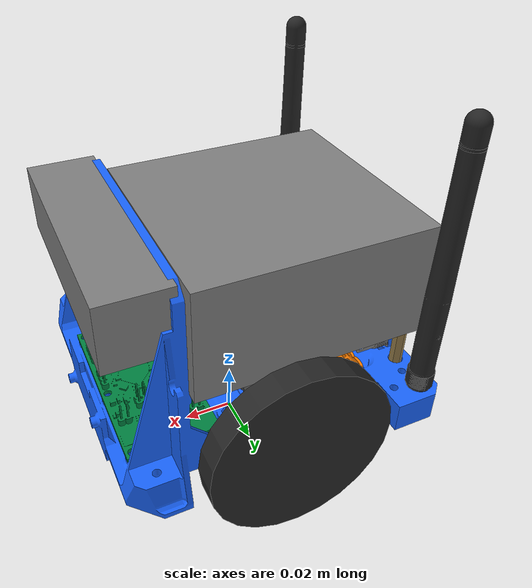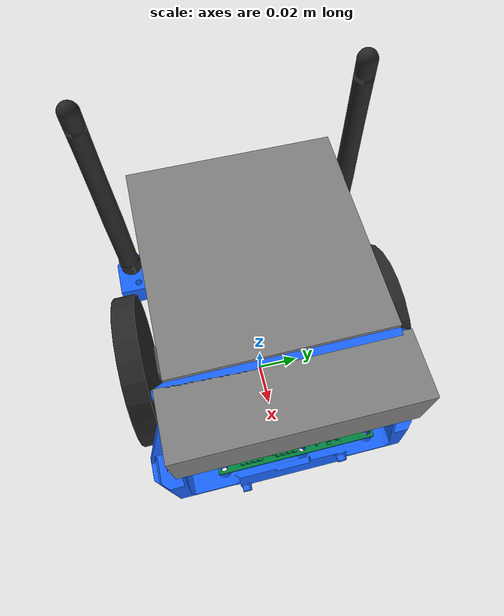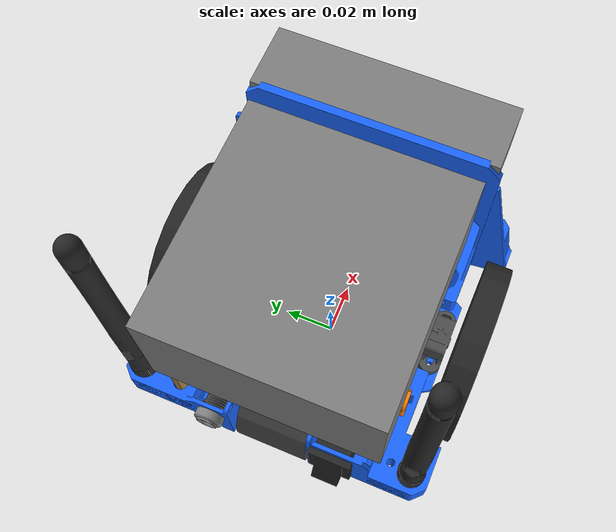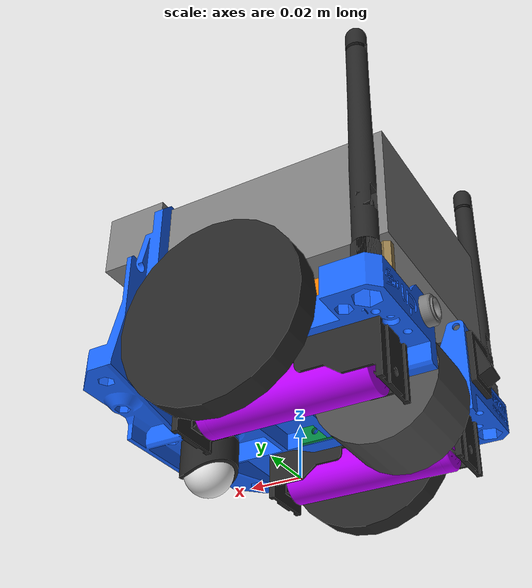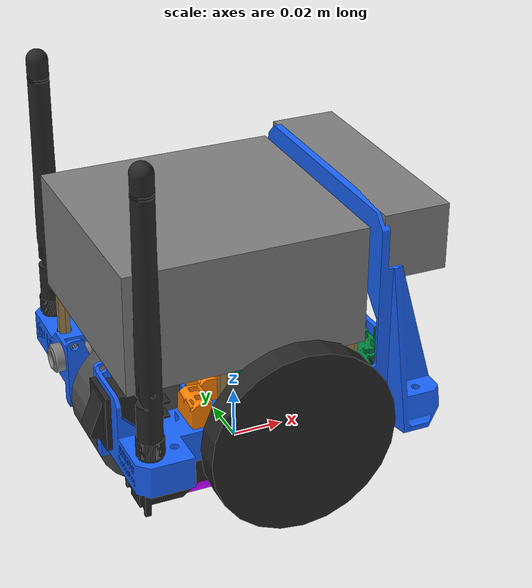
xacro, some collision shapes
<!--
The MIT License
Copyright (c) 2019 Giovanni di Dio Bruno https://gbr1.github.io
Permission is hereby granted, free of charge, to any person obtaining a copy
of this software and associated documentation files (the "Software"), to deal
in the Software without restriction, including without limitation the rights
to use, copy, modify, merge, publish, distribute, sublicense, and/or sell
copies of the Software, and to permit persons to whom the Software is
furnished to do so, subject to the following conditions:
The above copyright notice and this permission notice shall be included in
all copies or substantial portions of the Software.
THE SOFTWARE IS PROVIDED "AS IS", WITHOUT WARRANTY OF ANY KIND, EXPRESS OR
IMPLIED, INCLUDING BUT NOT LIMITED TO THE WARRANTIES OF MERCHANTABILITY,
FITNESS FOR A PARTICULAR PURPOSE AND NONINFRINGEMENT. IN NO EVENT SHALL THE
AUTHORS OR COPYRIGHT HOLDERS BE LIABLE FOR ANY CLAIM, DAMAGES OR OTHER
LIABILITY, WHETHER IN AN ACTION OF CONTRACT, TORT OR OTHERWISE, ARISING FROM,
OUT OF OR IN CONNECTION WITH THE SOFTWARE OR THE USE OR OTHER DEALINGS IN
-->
<?xml version="1.0"?>
<robot name="erwhi" xmlns:xacro="http://ros.org/wiki/xacro">
    <xacro:include filename="$(find erwhi_description)/urdf/erwhi.urdf.xacro" />
    <xacro:erwhi_robot />
</robot>

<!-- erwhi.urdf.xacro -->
<robot name="erwhi_robot" xmlns:xacro="http://ros.org/wiki/xacro">

    <xacro:include filename="$(find erwhi_description)/urdf/materials.xacro" />

    <xacro:include filename="$(find erwhi_description)/urdf/parts/wheel.urdf.xacro" />
    <xacro:include filename="$(find erwhi_description)/urdf/parts/chassis.urdf.xacro" />

    <xacro:include filename="$(find erwhi_description)/urdf/sensors.urdf.xacro" />
    <xacro:include filename="$(find erwhi_description)/urdf/casters.urdf.xacro" />
    <xacro:include filename="$(find erwhi_description)/urdf/details.urdf.xacro" />

    <xacro:property name="path_meshes" value="package://erwhi_description/meshes" />

    <xacro:property name="M_PI" value="3.1415926535897931" />
    <xacro:property name="M_PI_2" value="1.570796327" />

    <!-- wheel -->
    <xacro:property name="wheel_tread" value="0.01" />
    <xacro:property name="wheel_radius" value="0.035" />
    <xacro:property name="wheel_mass" value="0.100" />
    <xacro:property name="wheel_offset_x" value="0.0" />
    <xacro:property name="wheel_offset_y" value="0.057" />
    <xacro:property name="wheel_offset_z" value="0.006" />

    <xacro:macro name="erwhi_robot">

        <link name="base_footprint">
            <visual>
                <origin xyz="0 0 0" rpy="0 0 0" />
                <geometry>
                    <box size="0.001 0.001 0.001" />
                </geometry>
                <material name="erwhi_footprint" />
            </visual>
        </link>

        <gazebo reference="base_footprint">
            <turnGravityOff>false</turnGravityOff>
        </gazebo>

        <joint name="base_footprint_joint" type="fixed">
            <origin xyz="0 0 ${wheel_radius - wheel_offset_z}" rpy="0 0 0" />
            <parent link="base_footprint"/>
            <child link="base_link" />
        </joint>

        <!-- BASE-LINK -->
        <!-- robot body -->
        <xacro:chassis type="base_link">
        </xacro:chassis>

        <!-- wheels -->
        <xacro:wheel lr="left" parent="base_link" offset_x="${wheel_offset_x}" offset_y="${wheel_offset_y}" offset_z="${wheel_offset_z}" flip="0">
        </xacro:wheel>
        <xacro:wheel lr="right" parent="base_link" offset_x="${wheel_offset_x}" offset_y="${-wheel_offset_y}" offset_z="${wheel_offset_z}" flip="1">
        </xacro:wheel>

        <!-- casters -->
        <xacro:casters />
        <!-- details -->
        <xacro:details />
        <!-- sensors -->
        <xacro:sensors />

    </xacro:macro>

    <!-- Differential drive controller -->
    <gazebo>
        <plugin name="differential_drive_controller" filename="libgazebo_ros_diff_drive.so">
            <legacyMode>true</legacyMode>
            <rosDebugLevel>Debug</rosDebugLevel>
            <publishWheelTF>false</publishWheelTF>
            <robotNamespace>/</robotNamespace>
            <publishTf>1</publishTf>
            <publishWheelJointState>false</publishWheelJointState>
            <alwaysOn>true</alwaysOn>
            <updateRate>100.0</updateRate>
            <!-- strange gazebo annotation -->
            <leftJoint>right_joint</leftJoint>
            <rightJoint>left_joint</rightJoint>
            <wheelSeparation>${2*wheel_offset_y}</wheelSeparation>
            <wheelDiameter>${2*wheel_radius}</wheelDiameter>
            <broadcastTF>1</broadcastTF>
            <wheelTorque>1</wheelTorque>
            <wheelAcceleration>1.8</wheelAcceleration>
            <commandTopic>/erwhi_velocity_controller/cmd_vel</commandTopic>
            <publishOdomTF>false</publishOdomTF>
            <odometryFrame>odom</odometryFrame>
            <odometryTopic>/erwhi_velocity_controller/odom</odometryTopic>
            <odometrySource>world</odometrySource>
            <robotBaseFrame>base_footprint</robotBaseFrame>
        </plugin>
    </gazebo>

</robot>

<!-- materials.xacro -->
<robot name="erwhi_materials">

    <material name="erwhi_black">
        <color rgba="0.15 0.15 0.15 1.0"/>
    </material>

    <material name="erwhi_blue">
        <color rgba="0.1 0.40 1 1.0"/>
    </material>

    <material name="erwhi_light_grey">
        <color rgba="0.3 0.3 0.3 1.0"/>
    </material>

    <material name="erwhi_aluminum">
	    <color rgba="0.5 0.5 0.5 1"/>
    </material>

    <material name="erwhi_purple">
        <color rgba="0.749 0 1 1"/>
    </material>

    <material name="erwhi_footprint">
        <color rgba="1 0 0 0" />
    </material>

    <material name="erwhi_pcb">
        <color rgba="0 0.51 0.25 1.0" />
    </material>

    <material name="erwhi_orange">
        <color rgba="1.0 0.5 0 1.0" />
    </material>

    <material name="erwhi_brass">
        <color rgba="0.6 0.5 0.3 1.0" />
    </material>

    <material name="erwhi_white">
        <color rgba="0.9 0.9 0.9 1.0" />
    </material>
</robot>

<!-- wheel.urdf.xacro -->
<robot name="wheel" xmlns:xacro="http://ros.org/wiki/xacro">
     <xacro:macro name="wheel" params="lr parent offset_x offset_y offset_z flip">
        <link name="${lr}_wheel">
            <inertial>
                <origin xyz="0 0 0" rpy="0 0 0" />
                <mass value="${wheel_mass}" />
                <inertia ixx="${0.0834*wheel_mass*(3.0*wheel_radius*wheel_radius+wheel_tread*wheel_tread)}" ixy="0" ixz="0"
                         iyy="${0.0834*wheel_mass*(3.0*wheel_radius*wheel_radius+wheel_tread*wheel_tread)}" iyz="0"
                         izz="${0.5*wheel_mass*wheel_radius*wheel_radius}" />
            </inertial>
            <visual>
                <origin xyz="0 0 0" rpy="0 0 ${-flip*M_PI+M_PI_2}" />
                <geometry>
                    <mesh filename="${path_meshes}/pololu-wheel-70.stl" scale="0.001 0.001 0.001"/>
                </geometry>
                <material name="erwhi_black" />
            </visual>
            <collision>
                <origin xyz="0 0 0" rpy="${M_PI_2} 0 0" />
                <geometry>
                    <cylinder length="${wheel_tread}" radius="${wheel_radius}" />
                </geometry>
            </collision>
        </link>

        <gazebo reference="${lr}_wheel">
            <mu1 value="1.0"/>
            <mu2 value="1.0"/>
            <kp  value="10000000.0" />
            <kd  value="1.0" />
            <fdir1 value="1 0 0"/>
            <turnGravityOff>false</turnGravityOff>
            <material>Gazebo/FlatBlack</material>
        </gazebo>

        <joint name="${lr}_joint" type="continuous">
            <parent link="${parent}" />
            <child link="${lr}_wheel" />
            <axis xyz="0 1 0" rpy="0  0" />
            <origin rpy="0.0 0.0 0.0" xyz="${offset_x} ${offset_y} ${offset_z}"/>
            <limit effort="100" velocity="100"/>
            <joint_properties damping="0.0" friction="0.0"/>
        </joint>

        <transmission name="${lr}_trans" type="SimpleTransmission">
		    <type>transmission_interface/SimpleTransmission</type>
            <joint name="${lr}_joint">
                <hardwareInterface>hardware_interface/VelocityJointInterface</hardwareInterface>
            </joint>
		    <actuator name="${lr}_motor">
			    <mechanicalReduction>1</mechanicalReduction>
                <hardwareInterface>VelocityJointInterface</hardwareInterface>
		    </actuator>
        </transmission>
     </xacro:macro>
</robot>

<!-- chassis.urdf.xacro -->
<robot name="chassis" xmlns:xacro="http://ros.org/wiki/xacro">
    <xacro:macro name="chassis" params="type">

        <xacro:property name="chassis_mass" value="0.500" />
        <xacro:property name="chassis_size_x" value="0.120" />
        <xacro:property name="chassis_size_y" value="0.120" />
        <xacro:property name="chassis_size_z" value="0.090" />

        <link name="${type}">
            <inertial>
                <origin xyz="0 0 ${-chassis_size_z}" rpy="0 0 0" />
                <mass value="${chassis_mass}" />
                <inertia ixx="${chassis_mass*(chassis_size_y*chassis_size_y+chassis_size_z*chassis_size_z)}" ixy="0" ixz="0"
                         iyy="${chassis_mass*(chassis_size_x*chassis_size_x+chassis_size_z*chassis_size_z)}" iyz="0"
                         izz="${chassis_mass*(chassis_size_x*chassis_size_x+chassis_size_y*chassis_size_y)}" />
            </inertial>
            <visual>
                <origin xyz="0 0 0" rpy="${M_PI_2} 0 ${M_PI}" />
                <geometry>
                    <mesh filename="${path_meshes}/base_mk4_v33.stl" scale="0.001 0.001 0.001"/>
                </geometry>
                <material name="erwhi_blue" />
            </visual>
            <collision>
                <origin xyz="0 0 ${chassis_size_z/2-0.01}" rpy="0 0 0" />
                <geometry>
                    <box size="${chassis_size_x} ${chassis_size_y} ${chassis_size_z}"/>
                </geometry>
            </collision>
        </link>
        <gazebo reference="base_link">
            <turnGravityOff>false</turnGravityOff>
            <material>Gazebo/SkyBlue</material>
        </gazebo>
    </xacro:macro>
</robot>

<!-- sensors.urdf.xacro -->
<robot name="sensors" xmlns:xacro="http://ros.org/wiki/xacro">

    <xacro:include filename="$(find erwhi_description)/urdf/sensors/d435.urdf.xacro" />
    <xacro:include filename="$(find erwhi_description)/urdf/sensors/sengi.urdf.xacro" />
    <xacro:include filename="$(find erwhi_description)/urdf/sensors/imu.urdf.xacro" />

    <xacro:property name="d435_offset_x" value="0.049" />
    <xacro:property name="d435_offset_y" value="0" />
    <xacro:property name="d435_offset_z" value="0.053" />

    <!-- sengi -->
    <xacro:property name="sengi_offset_x" value="0.038" />
    <xacro:property name="sengi_offset_y" value="0.0035" />
    <xacro:property name="sengi_offset_z" value="0.004" />

    <xacro:macro name="sensors">
        <!-- sengi -->
        <xacro:sengi offset_x="${sengi_offset_x}" offset_y="${sengi_offset_y}" offset_z="${sengi_offset_z}">
        </xacro:sengi>
        <xacro:imu>
        </xacro:imu>
        <!-- realsense D435 -->
        <xacro:d435 offset_x="${d435_offset_x}" offset_y="${d435_offset_y}" offset_z="${d435_offset_z}">
        </xacro:d435>

    </xacro:macro>
</robot>

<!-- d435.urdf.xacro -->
<robot name="d435" xmlns:xacro="http://ros.org/wiki/xacro">
    <xacro:macro name="d435" params="offset_x offset_y offset_z">

        <xacro:property name="d435_cam_depth_to_left_ir_offset" value="0.0"/>
        <xacro:property name="d435_cam_depth_to_right_ir_offset" value="-0.050"/>
        <xacro:property name="d435_cam_depth_to_color_offset" value="0.015"/>

        <xacro:property name="d435_cam_width" value="0.090"/>
        <xacro:property name="d435_cam_height" value="0.025"/>
        <xacro:property name="d435_cam_depth" value="0.02505"/>
        <xacro:property name="d435_cam_mount_from_center_offset" value="0.0149"/>

        <xacro:property name="d435_cam_depth_px" value="${d435_cam_mount_from_center_offset}"/>
        <xacro:property name="d435_cam_depth_py" value="0.0175"/>
        <xacro:property name="d435_cam_depth_pz" value="${d435_cam_height/2}"/>

        <joint name="camera_joint" type="fixed">
            <parent link="base_link"/>
            <child link="camera_bottom_screw_frame" />
            <origin rpy="0.0 0.0 0" xyz="${offset_x} ${offset_y} ${offset_z}"/>
        </joint>
        <link name="camera_bottom_screw_frame"/>
        <gazebo reference="camera_bottom_screw_frame">
            <turnGravityOff>false</turnGravityOff>
        </gazebo>

        <joint name="camera_link_joint" type="fixed">
            <origin xyz="0 ${d435_cam_depth_py} ${d435_cam_depth_pz}" rpy="0 0 0"/>
            <parent link="camera_bottom_screw_frame"/>
            <child link="camera_link" />
        </joint>

        <link name="camera_link">
            <visual>
                <origin xyz="${d435_cam_mount_from_center_offset} ${-d435_cam_depth_py} 0" rpy="${M_PI_2} 0 ${M_PI_2}"/>
                <geometry>
                    <mesh filename="${path_meshes}/d435.stl" scale="0.001 0.001 0.001" />
                </geometry>
            <material name="erwhi_aluminum"/>
        </visual>
        <collision>
            <origin xyz="0 ${-d435_cam_depth_py} 0" rpy="0 0 0"/>
            <geometry>
                <box size="${d435_cam_depth} ${d435_cam_width} ${d435_cam_height}"/>
            </geometry>
        </collision>
        <inertial>
            <mass value="0.180" />
            <origin xyz="0 0 0" />
            <inertia ixx="0.003881243" ixy="0.0" ixz="0.0" iyy="0.000498940" iyz="0.0" izz="0.003879257" />
        </inertial>
        </link>
        <gazebo reference="camera_link">
            <turnGravityOff>false</turnGravityOff>
            <material>Gazebo/Grey</material>
        </gazebo>

        <!-- camera depth joints and links -->
        <joint name="camera_depth_joint" type="fixed">
            <origin xyz="0 0 0" rpy="0 0 0"/>
            <parent link="camera_link"/>
            <child link="camera_depth_frame" />
        </joint>
        <link name="camera_depth_frame"/>
        <gazebo reference="camera_depth_frame">
            <turnGravityOff>false</turnGravityOff>
        </gazebo>

        <joint name="camera_depth_optical_joint" type="fixed">
            <origin xyz="0 0 0" rpy="${-M_PI_2} 0 ${-M_PI_2}" />
            <parent link="camera_depth_frame" />
            <child link="camera_depth_optical_frame" />
        </joint>
        <link name="camera_depth_optical_frame"/>
        <gazebo reference="camera_depth_optical_frame">
            <turnGravityOff>false</turnGravityOff>
        </gazebo>

        <!-- camera left IR joints and links -->
        <joint name="camera_left_ir_joint" type="fixed">
            <origin xyz="0 ${d435_cam_depth_to_left_ir_offset} 0" rpy="0 0 0" />
            <parent link="camera_depth_frame" />
            <child link="camera_left_ir_frame" />
        </joint>
        <link name="camera_left_ir_frame"/>
        <gazebo reference="camera_left_ir_frame">
            <turnGravityOff>false</turnGravityOff>
        </gazebo>

        <joint name="camera_left_ir_optical_joint" type="fixed">
            <origin xyz="0 0 0" rpy="${-M_PI_2} 0 ${-M_PI_2}" />
            <parent link="camera_left_ir_frame" />
            <child link="camera_left_ir_optical_frame" />
        </joint>
        <link name="camera_left_ir_optical_frame"/>
        <gazebo reference="camera_left_ir_optical_frame">
            <turnGravityOff>false</turnGravityOff>
        </gazebo>

        <!-- camera right IR joints and links -->
        <joint name="camera_right_ir_joint" type="fixed">
            <origin xyz="0 ${d435_cam_depth_to_right_ir_offset} 0" rpy="0 0 0" />
            <parent link="camera_depth_frame" />
            <child link="camera_right_ir_frame" />
        </joint>
        <link name="camera_right_ir_frame"/>
        <gazebo reference="camera_right_ir_frame">
            <turnGravityOff>false</turnGravityOff>
        </gazebo>

        <joint name="camera_right_ir_optical_joint" type="fixed">
            <origin xyz="0 0 0" rpy="${-M_PI_2} 0 ${-M_PI_2}" />
            <parent link="camera_right_ir_frame" />
            <child link="camera_right_ir_optical_frame" />
        </joint>
        <link name="camera_right_ir_optical_frame"/>
        <gazebo reference="camera_right_ir_optical_frame">
            <turnGravityOff>false</turnGravityOff>
        </gazebo>

        <!-- camera color joints and links -->
        <joint name="camera_color_joint" type="fixed">
            <origin xyz="0 ${d435_cam_depth_to_color_offset} 0" rpy="0 0 0" />
            <parent link="camera_depth_frame" />
            <child link="camera_color_frame" />
        </joint>
        <link name="camera_color_frame"/>
        <gazebo reference="camera_color_frame">
            <turnGravityOff>false</turnGravityOff>
        </gazebo>

        <joint name="camera_color_optical_joint" type="fixed">
            <origin xyz="0 0 0" rpy="${-M_PI_2} 0 ${-M_PI_2}" />
            <parent link="camera_color_frame" />
            <child link="camera_color_optical_frame" />
        </joint>
        <link name="camera_color_optical_frame"/>
        <gazebo reference="camera_color_optical_frame">
            <turnGravityOff>false</turnGravityOff>
        </gazebo>

        <link name="camera_depth_frame_gazebo"/>
        <joint name="gazebo_joint" type="fixed">
            <origin xyz="0 0 0" rpy="${-M_PI_2} 0 ${-M_PI_2}" />
            <parent link="camera_link" />
            <child link="camera_depth_frame_gazebo" />
        </joint>
        <gazebo reference="camera_depth_frame_gazebo">
            <turnGravityOff>false</turnGravityOff>
        </gazebo>

    </xacro:macro>

    <gazebo reference="camera_link">
        <sensor name="d435" type="depth">
            <update_rate>30</update_rate>
            <camera>
                <horizontal_fov>1.59174</horizontal_fov>
                <image>
                    <width>640</width>
                    <height>480</height>
                    <format>R8G8B8</format>
                </image>
                <clip>
                    <near>0.02</near>
                    <far>6</far>
                </clip>
            </camera>
            <plugin name="camera_plugin" filename="libgazebo_ros_openni_kinect.so">
                <visualize>true</visualize>
                <baseline>0.05</baseline>
                <alwaysOn>true</alwaysOn>
                <updateRate>0.0</updateRate>
                <cameraName>d435</cameraName>
                <imageTopicName>/camera/color/image_raw</imageTopicName>
                <cameraInfoTopicName>/camera/color/camera_info</cameraInfoTopicName>
                <depthImageTopicName>/camera/aligned_depth_to_color/image_raw</depthImageTopicName>
                <depthImageInfoTopicName>/camera/depth/camera_info</depthImageInfoTopicName>
                <pointCloudTopicName>/camera/depth/color/points</pointCloudTopicName>
                <frameName>camera_depth_frame_gazebo</frameName>
                <pointCloudCutoff>0.02</pointCloudCutoff>
                <distortionK1>0</distortionK1>
                <distortionK2>0</distortionK2>
                <distortionK3>0</distortionK3>
                <distortionT1>0</distortionT1>
                <distortionT2>0</distortionT2>
                <CxPrime>0</CxPrime>
                <Cx>0</Cx>
                <Cy>0</Cy>
                <focalLength>0</focalLength>
                <hackBaseline>0</hackBaseline>
            </plugin>
        </sensor>
    </gazebo>
</robot>

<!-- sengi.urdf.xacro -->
<robot name="sengi" xmlns:xacro="http://ros.org/wiki/xacro">
    <xacro:macro name="sengi" params="offset_x offset_y offset_z">

        <xacro:property name="sengi_size_x" value="0.070" />
        <xacro:property name="sengi_size_y" value="0.035" />
        <xacro:property name="sengi_size_z" value="0.010" />
        <xacro:property name="sengi_mass" value="0.01" />

        <link name="sengi_link">
            <inertial>
                <origin xyz="0 0 0" rpy="0 0 0" />
                <mass value="${sengi_mass}" />
                <inertia ixx="${sengi_mass*(sengi_size_y*sengi_size_y+sengi_size_z*sengi_size_z)}" ixy="0" ixz="0"
                         iyy="${sengi_mass*(sengi_size_x*sengi_size_x+sengi_size_z*sengi_size_z)}" iyz="0"
                         izz="${sengi_mass*(sengi_size_x*sengi_size_x+sengi_size_y*sengi_size_y)}" />
            </inertial>
            <visual>
                <origin xyz="${-sengi_size_y/2} ${sengi_size_x/2}  0" rpy="0 0 ${-M_PI_2}" />
                <geometry>
                    <mesh filename="${path_meshes}/sengi_F.stl" scale="0.001 0.001 0.001"/>
                </geometry>
                <material name="erwhi_pcb" />
            </visual>
            <collision>
                <origin xyz="0 0 0" rpy="0 0 ${M_PI_2}" />
                <geometry>
                    <box size="${sengi_size_x} ${sengi_size_y} ${sengi_size_z}" />
                </geometry>
            </collision>
        </link>
        <joint name="sengi_joint" type="fixed">
            <parent link="base_link" />
            <child link="sengi_link" />
            <origin rpy="0 0 0" xyz="${offset_x} ${offset_y} ${offset_z}"/>
        </joint>
        <gazebo reference="sengi_link">
            <turnGravityOff>false</turnGravityOff>
            <material>Gazebo/Green</material>
        </gazebo>
    </xacro:macro>
</robot>

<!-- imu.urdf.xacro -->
<robot name="imu" xmlns:xacro="http://ros.org/wiki/xacro">
    <xacro:macro name="imu">
        <xacro:property name="imu_size_x" value="0.004" />
        <xacro:property name="imu_size_y" value="0.006" />
        <xacro:property name="imu_size_z" value="0.001" />
        <xacro:property name="imu_mass" value="0.00001" />
        <xacro:property name="imu_offset_x" value="0.0095" />
        <xacro:property name="imu_offset_y" value="-0.029" />
        <xacro:property name="imu_offset_z" value="0.0021" />

        <link name="imu_link">
            <inertial>
                <origin xyz="0 0 0" rpy="0 0 0" />
                <mass value="${imu_mass}" />
                <inertia ixx="${imu_mass*(imu_size_y*imu_size_y+imu_size_z*imu_size_z)}" ixy="0" ixz="0"
                         iyy="${imu_mass*(imu_size_x*imu_size_x+imu_size_z*imu_size_z)}" iyz="0"
                         izz="${imu_mass*(imu_size_x*imu_size_x+imu_size_y*imu_size_y)}" />
            </inertial>
            <visual>
                <origin xyz="0 0 0" rpy="0 0 0" />
                <geometry>
                    <box size="${imu_size_x} ${imu_size_y} ${imu_size_z}" />
                </geometry>
                <material name="erwhi_black" />
            </visual>
            <collision>
                <origin xyz="0 0 0" rpy="0 0 0" />
                <geometry>
                    <box size="${imu_size_x} ${imu_size_y} ${imu_size_z}" />
                </geometry>
            </collision>
        </link>
        <joint name="imu_joint" type="fixed">
            <parent link="sengi_link" />
            <child link="imu_link" />
            <origin rpy="0 0 0" xyz="${imu_offset_x} ${imu_offset_y} ${imu_offset_z}"/>
        </joint>
        <gazebo reference="imu_link">
            <turnGravityOff>false</turnGravityOff>
            <material>Gazebo/FlatBlack</material>
        </gazebo>
    </xacro:macro>

    <gazebo reference="imu_link">
        <gravity>true</gravity>
        <sensor name="imu_sensor" type="imu">
            <always_on>true</always_on>
            <update_rate>100</update_rate>
            <visualize>true</visualize>
            <topic>/imu/data</topic>
            <plugin filename="libgazebo_ros_imu_sensor.so" name="imu_plugin">
                <topicName>/imu/data</topicName>
                <bodyName>imu_link</bodyName>
                <updateRateHZ>100.0</updateRateHZ>
                <gaussianNoise>0.0025</gaussianNoise>
                <xyzOffset>0 0 0</xyzOffset>
                <rpyOffset>0 0 0</rpyOffset>
                <frameName>imu_link</frameName>
            </plugin>
            <pose>0 0 0 0 0 0</pose>
        </sensor>
    </gazebo>
</robot>

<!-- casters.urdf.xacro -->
<robot name="casters" xmlns:xacro="http://ros.org/wiki/xacro">

    <xacro:include filename="$(find erwhi_description)/urdf/casters/omniwheel.urdf.xacro" />
    <xacro:include filename="$(find erwhi_description)/urdf/casters/ball_caster_fixed.urdf.xacro" />
    <xacro:include filename="$(find erwhi_description)/urdf/casters/ball_caster.urdf.xacro" />

    <!-- omniwheel -->
    <xacro:property name="omniwheel_offset_x" value="-0.036" />
    <xacro:property name="omniwheel_offset_y" value="0.0" />
    <xacro:property name="omniwheel_offset_z" value="-0.006" />

    <!-- ball caster -->
    <xacro:property name="ball_caster_fixed_offset_x" value="0.039" />
    <xacro:property name="ball_caster_fixed_offset_y" value="0.0" />
    <xacro:property name="ball_caster_fixed_offset_z" value="-0.0063" />

    <xacro:property name="ball_caster_offset_x" value="0.0" />
    <xacro:property name="ball_caster_offset_y" value="0.0" />
    <xacro:property name="ball_caster_offset_z" value="-0.012" />

    <xacro:macro name="casters">

        <!-- casters -->
        <xacro:omniwheel offset_x="${omniwheel_offset_x}" offset_y="${omniwheel_offset_y}" offset_z="${omniwheel_offset_z}">
        </xacro:omniwheel>
        <xacro:ball_caster_fixed offset_x="${ball_caster_fixed_offset_x}" offset_y="${ball_caster_fixed_offset_y}" offset_z="${ball_caster_fixed_offset_z}">
        </xacro:ball_caster_fixed>
        <xacro:ball_caster offset_x="${ball_caster_offset_x}" offset_y="${ball_caster_offset_y}" offset_z="${ball_caster_offset_z}">
        </xacro:ball_caster>

    </xacro:macro>
</robot>

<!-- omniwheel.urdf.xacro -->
<robot name="omniwheel" xmlns:xacro="http://ros.org/wiki/xacro">
    <xacro:macro name="omniwheel" params="offset_x offset_y offset_z">

        <xacro:property name="omniwheel_tread" value="0.028" />
        <xacro:property name="omniwheel_radius" value="0.024" />
        <xacro:property name="omniwheel_mass" value="0.050" />

        <link name="omniwheel_link">
            <inertial>
                <origin xyz="0 0 0" rpy="0 0 0" />
                <mass value="${omniwheel_mass}" />
                <inertia ixx="${0.0834*omniwheel_mass*(3.0*omniwheel_radius*omniwheel_radius+omniwheel_tread*omniwheel_tread)}" ixy="0" ixz="0"
                         iyy="${0.0834*omniwheel_mass*(3.0*omniwheel_radius*omniwheel_radius+omniwheel_tread*omniwheel_tread)}" iyz="0"
                         izz="${0.5*omniwheel_mass*omniwheel_radius*omniwheel_radius}" />
            </inertial>
            <visual>
                <origin xyz="0 0 0" rpy="0 0 0" />
                <geometry>
                    <mesh filename="${path_meshes}/omniwheel.stl" scale="0.001 0.001 0.001"/>
                </geometry>
                <material name="erwhi_light_grey" />
            </visual>
            <collision>
                <origin xyz="0 0 0" rpy="${M_PI_2} 0 0" />
                <geometry>
                    <cylinder length="${omniwheel_tread}" radius="${omniwheel_radius}" />
                </geometry>
            </collision>
        </link>
        <joint name="omniwheel_joint" type="fixed">
            <parent link="base_link" />
            <child link="omniwheel_link" />
            <origin rpy="0.0 0.0 0" xyz="${offset_x} ${offset_y} ${offset_z}"/>
        </joint>
        <gazebo reference="omniwheel_link">
            <turnGravityOff>false</turnGravityOff>
            <material>Gazebo/DarkGrey</material>
        </gazebo>
    </xacro:macro>
</robot>

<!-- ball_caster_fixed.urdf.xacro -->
<robot name="ball_caster_fixed" xmlns:xacro="http://ros.org/wiki/xacro">
    <xacro:macro name="ball_caster_fixed" params="offset_x offset_y offset_z">

        <xacro:property name="ball_caster_fixed_length" value="0.017" />
        <xacro:property name="ball_caster_fixed_radius" value="0.011" />
        <xacro:property name="ball_caster_fixed_mass" value="0.002" />

        <link name="ball_caster_fixed_link">
            <inertial>
                <origin xyz="0 0 0" rpy="0 0 0" />
                <mass value="${ball_caster_fixed_mass}" />
                <inertia ixx="${0.0834*ball_caster_fixed_mass*(3.0*ball_caster_fixed_radius*ball_caster_fixed_radius+ball_caster_fixed_length*ball_caster_fixed_length)}" ixy="0" ixz="0"
                         iyy="${0.0834*ball_caster_fixed_mass*(3.0*ball_caster_fixed_radius*ball_caster_fixed_radius+ball_caster_fixed_length*ball_caster_fixed_length)}" iyz="0"
                         izz="${0.5*ball_caster_fixed_mass*ball_caster_fixed_radius*ball_caster_fixed_radius}" />
            </inertial>
            <visual>
                <origin xyz="0 0 0" rpy="${-M_PI_2} 0 ${-M_PI_2}" />
                <geometry>
                    <mesh filename="${path_meshes}/ball_caster_fixed.stl" scale="0.001 0.001 0.001"/>
                </geometry>
                <material name="erwhi_black" />
            </visual>
            <collision>
                <origin xyz="0 0 0" rpy="0 0 0" />
                <geometry>
                    <cylinder length="${ball_caster_fixed_length}" radius="${ball_caster_fixed_radius}" />
                </geometry>
            </collision>
        </link>
        <joint name="ball_caster_fixed_joint" type="fixed">
            <parent link="base_link" />
            <child link="ball_caster_fixed_link" />
            <origin rpy="0 0 0" xyz="${offset_x} ${offset_y} ${offset_z}"/>
        </joint>
        <gazebo reference="ball_caster_fixed_link">
            <turnGravityOff>false</turnGravityOff>
            <material>Gazebo/FlatBlack</material>
        </gazebo>
    </xacro:macro>
</robot>

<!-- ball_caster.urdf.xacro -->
<robot name="ball_caster" xmlns:xacro="http://ros.org/wiki/xacro">
    <xacro:macro name="ball_caster" params="offset_x offset_y offset_z">

        <xacro:property name="ball_caster_radius" value="0.009525" />
        <xacro:property name="ball_caster_mass" value="0.005" />

        <link name="ball_caster_link">
            <inertial>
                <origin xyz="0 0 0" rpy="0 0 0" />
                <mass value="${ball_caster_mass}" />
                <inertia ixx="${2/5*ball_caster_mass*ball_caster_radius*ball_caster_radius}" ixy="0" ixz="0"
                         iyy="${2/5*ball_caster_mass*ball_caster_radius*ball_caster_radius}" iyz="0"
                         izz="${2/5*ball_caster_mass*ball_caster_radius*ball_caster_radius}" />
            </inertial>
            <visual>
                <origin xyz="0 0 0" rpy="0 0 0" />
                <geometry>
                    <mesh filename="${path_meshes}/ball.stl" scale="0.001 0.001 0.001"/>
                </geometry>
                <material name="erwhi_white" />
            </visual>
            <collision>
                <origin xyz="0 0 0" rpy="0 0 0" />
                <geometry>
                    <sphere radius="${ball_caster_radius}"/>
                </geometry>
            </collision>
        </link>
        <joint name="ball_caster_joint" type="fixed">
            <parent link="ball_caster_fixed_link" />
            <child link="ball_caster_link" />
            <origin rpy="0 0 0" xyz="${offset_x} ${offset_y} ${offset_z}"/>
        </joint>
        <gazebo reference="ball_caster_link">
            <turnGravityOff>false</turnGravityOff>
            <material>Gazebo/White</material>
        </gazebo>
    </xacro:macro>
</robot>

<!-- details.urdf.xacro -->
<robot name="details" xmlns:xacro="http://ros.org/wiki/xacro">

    <xacro:include filename="$(find erwhi_description)/urdf/details/components/battery_holder.urdf.xacro" />
    <xacro:include filename="$(find erwhi_description)/urdf/details/components/battery.urdf.xacro" />
    <xacro:include filename="$(find erwhi_description)/urdf/details/components/antenna.urdf.xacro" />
    <xacro:include filename="$(find erwhi_description)/urdf/details/components/motor.urdf.xacro" />
    <xacro:include filename="$(find erwhi_description)/urdf/details/components/encoder.urdf.xacro" />

    <xacro:include filename="$(find erwhi_description)/urdf/details/connectors/power/power_switch.urdf.xacro" />
    <xacro:include filename="$(find erwhi_description)/urdf/details/connectors/power/ext_dc.urdf.xacro" />

    <xacro:include filename="$(find erwhi_description)/urdf/details/connectors/wago/wago2.urdf.xacro" />
    <xacro:include filename="$(find erwhi_description)/urdf/details/connectors/wago/wago3.urdf.xacro" />
    <xacro:include filename="$(find erwhi_description)/urdf/details/components/up2.urdf.xacro" />
    <xacro:include filename="$(find erwhi_description)/urdf/details/connectors/standoffs/standoff.urdf.xacro" />

    <!-- battery holder -->
    <xacro:property name="bh_offset_x" value="-0.01325" />
    <xacro:property name="bh_offset_y" value="0.032" />
    <xacro:property name="bh_offset_z" value="-0.002" />

    <!-- battery -->
    <xacro:property name="battery_offset_x" value="0" />
    <xacro:property name="battery_offset_y" value="0" />
    <xacro:property name="battery_offset_z" value="-0.012" />

    <!-- antenna -->
    <xacro:property name="antenna_offset_x" value="-0.053" />
    <xacro:property name="antenna_offset_y" value="0.053" />
    <xacro:property name="antenna_offset_z" value="0.010" />

    <!-- motor -->
    <xacro:property name="motor_offset_x" value="0" />
    <xacro:property name="motor_offset_y" value="0.040" />
    <xacro:property name="motor_offset_z" value="0.006" />

    <!-- encoder -->
    <xacro:property name="encoder_offset_x" value="0" />
    <xacro:property name="encoder_offset_y" value="0.011" />
    <xacro:property name="encoder_offset_z" value="-0.01" />

    <!-- power switch -->
    <xacro:property name="ps_offset_x" value="-0.06" />
    <xacro:property name="ps_offset_y" value="-0.025" />
    <xacro:property name="ps_offset_z" value="0.012" />

    <!-- ext dc -->
    <xacro:property name="ext_dc_offset_x" value="-0.06" />
    <xacro:property name="ext_dc_offset_y" value="0.023" />
    <xacro:property name="ext_dc_offset_z" value="0.008" />

    <!-- wago2 -->
    <xacro:property name="wago2_0_offset_x" value="-0.031" />
    <xacro:property name="wago2_0_offset_y" value="0.037" />
    <xacro:property name="wago2_0_offset_z" value="0" />
    <xacro:property name="wago2_1_offset_x" value="-0.0225" />
    <xacro:property name="wago2_1_offset_y" value="-0.0235" />
    <xacro:property name="wago2_1_offset_z" value="0" />
    <xacro:property name="wago2_2_offset_x" value="-0.031" />
    <xacro:property name="wago2_2_offset_y" value="-0.037" />
    <xacro:property name="wago2_2_offset_z" value="0" />
    <xacro:property name="wago2_3_offset_x" value="-0.007" />
    <xacro:property name="wago2_3_offset_y" value="0" />
    <xacro:property name="wago2_3_offset_z" value="0" />

    <!-- wago3 -->
    <xacro:property name="wago3_0_offset_x" value="-0.021" />
    <xacro:property name="wago3_0_offset_y" value="0.035" />
    <xacro:property name="wago3_0_offset_z" value="0" />

     <!-- up2 -->
    <xacro:property name="up2_offset_x" value="0.0045" />
    <xacro:property name="up2_offset_y" value="0.001" />
    <xacro:property name="up2_offset_z" value="0.0506" />

    <!-- standoffs -->
    <xacro:property name="standoff_0_offset_x" value="-0.0585" />
    <xacro:property name="standoff_0_offset_y" value="0.037" />
    <xacro:property name="standoff_0_offset_z" value="-0.0016" />
    <xacro:property name="standoff_1_offset_x" value="0.0245" />
    <xacro:property name="standoff_1_offset_y" value="0.019" />
    <xacro:property name="standoff_1_offset_z" value="-0.0016" />
    <xacro:property name="standoff_2_offset_x" value="0.0245" />
    <xacro:property name="standoff_2_offset_y" value="-0.039" />
    <xacro:property name="standoff_2_offset_z" value="-0.0016" />
    <xacro:property name="standoff_3_offset_x" value="-0.0245" />
    <xacro:property name="standoff_3_offset_y" value="0.019" />
    <xacro:property name="standoff_3_offset_z" value="-0.0016" />
    <xacro:property name="standoff_4_offset_x" value="-0.0245" />
    <xacro:property name="standoff_4_offset_y" value="-0.039" />
    <xacro:property name="standoff_4_offset_z" value="-0.0016" />

    <xacro:macro name="details">
        <!-- batteries -->
        <xacro:battery_holder l_r="left" offset_x="${bh_offset_x}" offset_y="${bh_offset_y}" offset_z="${bh_offset_z}" flip="1">
        </xacro:battery_holder>
        <xacro:battery_holder l_r="right" offset_x="${bh_offset_x}" offset_y="${-bh_offset_y}" offset_z="${bh_offset_z}" flip="0">
        </xacro:battery_holder>
        <xacro:battery l_r="left" offset_x="${battery_offset_x}" offset_y="${battery_offset_y}" offset_z="${battery_offset_z}" flip="1">
        </xacro:battery>
        <xacro:battery l_r="right" offset_x="${battery_offset_x}" offset_y="${battery_offset_y}" offset_z="${battery_offset_z}" flip="0">
        </xacro:battery>

        <!-- antennas -->
        <xacro:antenna l_r="left" offset_x="${antenna_offset_x}" offset_y="${antenna_offset_y}" offset_z="${antenna_offset_z}">
        </xacro:antenna>
         <xacro:antenna l_r="right" offset_x="${antenna_offset_x}" offset_y="${-antenna_offset_y}" offset_z="${antenna_offset_z}">
        </xacro:antenna>

        <!-- motors -->
        <xacro:motor l_r="left" offset_x="${motor_offset_x}" offset_y="${motor_offset_y}" offset_z="${motor_offset_z}" flip="0">
        </xacro:motor>
        <xacro:motor l_r="right" offset_x="${motor_offset_x}" offset_y="${-motor_offset_y}" offset_z="${motor_offset_z}" flip="1">
        </xacro:motor>
        <xacro:encoder l_r="left" offset_x="${encoder_offset_x}" offset_y="${encoder_offset_y}" offset_z="${encoder_offset_z}" flip="0">
        </xacro:encoder>
        <xacro:encoder l_r="right" offset_x="${encoder_offset_x}" offset_y="${-encoder_offset_y}" offset_z="${encoder_offset_z}" flip="1">
        </xacro:encoder>

        <!-- power -->
        <xacro:power_switch offset_x="${ps_offset_x}" offset_y="${ps_offset_y}" offset_z="${ps_offset_z}">
        </xacro:power_switch>
        <xacro:ext_dc offset_x="${ext_dc_offset_x}" offset_y="${ext_dc_offset_y}" offset_z="${ext_dc_offset_z}">
        </xacro:ext_dc>

        <!-- wagos -->
        <xacro:wago2 code="0" offset_x="${wago2_0_offset_x}" offset_y="${wago2_0_offset_y}" offset_z="${wago2_0_offset_z}" flip="0">
        </xacro:wago2>
        <xacro:wago2 code="1" offset_x="${wago2_1_offset_x}" offset_y="${wago2_1_offset_y}" offset_z="${wago2_1_offset_z}" flip="0">
        </xacro:wago2>
        <xacro:wago2 code="2" offset_x="${wago2_2_offset_x}" offset_y="${wago2_2_offset_y}" offset_z="${wago2_2_offset_z}" flip="0">
        </xacro:wago2>
        <xacro:wago2 code="3" offset_x="${wago2_3_offset_x}" offset_y="${wago2_3_offset_y}" offset_z="${wago2_3_offset_z}" flip="1">
        </xacro:wago2>
        <xacro:wago3 code="0" offset_x="${wago3_0_offset_x}" offset_y="${wago3_0_offset_y}" offset_z="${wago3_0_offset_z}" flip="0">
        </xacro:wago3>

        <!-- up2 -->
        <xacro:up2  offset_x="${up2_offset_x}" offset_y="${up2_offset_y}" offset_z="${up2_offset_z}">
        </xacro:up2>
        <xacro:standoff code="0" offset_x="${standoff_0_offset_x}" offset_y="${standoff_0_offset_y}" offset_z="${standoff_0_offset_z}">
        </xacro:standoff>
        <xacro:standoff code="1" offset_x="${standoff_1_offset_x}" offset_y="${standoff_1_offset_y}" offset_z="${standoff_1_offset_z}">
        </xacro:standoff>
        <xacro:standoff code="2" offset_x="${standoff_2_offset_x}" offset_y="${standoff_2_offset_y}" offset_z="${standoff_2_offset_z}">
        </xacro:standoff>
        <xacro:standoff code="3" offset_x="${standoff_3_offset_x}" offset_y="${standoff_3_offset_y}" offset_z="${standoff_3_offset_z}">
        </xacro:standoff>
        <xacro:standoff code="4" offset_x="${standoff_4_offset_x}" offset_y="${standoff_4_offset_y}" offset_z="${standoff_4_offset_z}">
        </xacro:standoff>
    </xacro:macro>
</robot>

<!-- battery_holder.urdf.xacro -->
<robot name="battery_holder" xmlns:xacro="http://ros.org/wiki/xacro">
    <xacro:macro name="battery_holder" params="l_r offset_x offset_y offset_z flip">

        <xacro:property name="bh_size_x" value="0.078" />
        <xacro:property name="bh_size_y" value="0.020" />
        <xacro:property name="bh_size_z" value="0.022" />
        <xacro:property name="bh_mass" value="0.030" />

        <link name="${l_r}_battery_holder_link">
            <inertial>
                <origin xyz="0 0 0" rpy="0 0 0" />
                <mass value="${bh_mass}" />
                <inertia ixx="${bh_mass*(bh_size_y*bh_size_y+bh_size_z*bh_size_z)}" ixy="0" ixz="0"
                         iyy="${bh_mass*(bh_size_x*bh_size_x+bh_size_z*bh_size_z)}" iyz="0"
                         izz="${bh_mass*(bh_size_x*bh_size_x+bh_size_y*bh_size_y)}" />
            </inertial>
            <visual>
                <origin xyz="0 0 0" rpy="${M_PI_2} ${M_PI} ${M_PI_2+flip*M_PI}" />
                <geometry>
                    <mesh filename="${path_meshes}/battery_holder.stl" scale="0.001 0.001 0.001"/>
                </geometry>
                <material name="erwhi_black" />
            </visual>
            <collision>
                <origin xyz="0 0 ${-bh_size_z/2}" rpy="0 0 0" />
                <geometry>
                    <box size="${bh_size_x} ${bh_size_y} ${bh_size_z}" />
                </geometry>
            </collision>
        </link>
        <joint name="${l_r}_battery_holder_joint" type="fixed">
            <parent link="base_link" />
            <child link="${l_r}_battery_holder_link" />
            <origin rpy="0 0 0" xyz="${offset_x} ${offset_y} ${offset_z}"/>
        </joint>
        <gazebo reference="${l_r}_battery_holder_link">
            <turnGravityOff>false</turnGravityOff>
            <material>Gazebo/FlatBlack</material>
        </gazebo>
    </xacro:macro>
</robot>

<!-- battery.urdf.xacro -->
<robot name="battery" xmlns:xacro="http://ros.org/wiki/xacro">
    <xacro:macro name="battery" params="l_r offset_x offset_y offset_z flip">

        <xacro:property name="battery_length" value="0.065" />
        <xacro:property name="battery_radius" value="0.009" />
        <xacro:property name="battery_mass" value="0.150" />

        <link name="${l_r}_battery_link">
            <inertial>
                <origin xyz="0 0 0" rpy="0 0 0" />
                <mass value="${battery_mass}" />
                <inertia ixx="${0.0834*battery_mass*(3.0*battery_radius*battery_radius+battery_length*battery_length)}" ixy="0" ixz="0"
                         iyy="${0.0834*battery_mass*(3.0*battery_radius*battery_radius+battery_length*battery_length)}" iyz="0"
                         izz="${0.5*battery_mass*battery_radius*battery_radius}" />
            </inertial>
            <visual>
                <origin xyz="${-0.012*flip+0.006} 0 0" rpy="0 0 ${M_PI/2-1*flip*M_PI}" />
                <geometry>
                    <mesh filename="${path_meshes}/battery.stl" scale="0.001 0.001 0.001"/>
                </geometry>
                <material name="erwhi_purple" />
            </visual>
            <collision>
                <origin xyz="0 0 0" rpy="0 ${M_PI_2} 0" />
                <geometry>
                    <cylinder length="${battery_length}" radius="${battery_radius}" />
                </geometry>
            </collision>
        </link>
        <joint name="${l_r}_battery_joint" type="fixed">
            <parent link="${l_r}_battery_holder_link" />
            <child link="${l_r}_battery_link" />
            <origin rpy="0 0 0" xyz="${offset_x} ${offset_y} ${offset_z}"/>
        </joint>
        <gazebo reference="${l_r}_battery_link">
            <turnGravityOff>false</turnGravityOff>
            <material>Gazebo/Purple</material>
        </gazebo>
    </xacro:macro>
</robot>

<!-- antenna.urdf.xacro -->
<robot name="antenna" xmlns:xacro="http://ros.org/wiki/xacro">
    <xacro:macro name="antenna" params="l_r offset_x offset_y offset_z">

        <xacro:property name="antenna_length" value="0.110" />
        <xacro:property name="antenna_radius" value="0.005" />
        <xacro:property name="antenna_mass" value="0.030" />

        <link name="${l_r}_antenna_link">
            <inertial>
                <origin xyz="0 0 0" rpy="0 0 0" />
                <mass value="${antenna_mass}" />
                <inertia ixx="${0.0834*antenna_mass*(3.0*antenna_radius*antenna_radius+antenna_length*antenna_length)}" ixy="0" ixz="0"
                         iyy="${0.0834*antenna_mass*(3.0*antenna_radius*antenna_radius+antenna_length*antenna_length)}" iyz="0"
                         izz="${0.5*antenna_mass*antenna_radius*antenna_radius}" />
            </inertial>
            <visual>
                <origin xyz="0 0 0" rpy="${M_PI} 0 ${M_PI_2}" />
                <geometry>
                    <mesh filename="${path_meshes}/antenna.stl" scale="0.001 0.001 0.001"/>
                </geometry>
                <material name="erwhi_black" />
            </visual>
            <collision>
                <origin xyz="0 0 ${antenna_length/2-offset_z}" rpy="0 0 0" />
                <geometry>
                    <cylinder length="${antenna_length}" radius="${antenna_radius}" />
                </geometry>
            </collision>
        </link>
        <joint name="${l_r}_antenna_joint" type="fixed">
            <parent link="base_link" />
            <child link="${l_r}_antenna_link" />
            <origin rpy="0 0 0" xyz="${offset_x} ${offset_y} ${offset_z}"/>
        </joint>
        <gazebo reference="${l_r}_antenna_link">
            <turnGravityOff>false</turnGravityOff>
            <material>Gazebo/FlatBlack</material>
        </gazebo>
    </xacro:macro>
</robot>

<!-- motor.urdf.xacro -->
<robot name="motor" xmlns:xacro="http://ros.org/wiki/xacro">
    <xacro:macro name="motor" params="l_r offset_x offset_y offset_z flip">

        <xacro:property name="motor_size_x" value="0.025" />
        <xacro:property name="motor_size_y" value="0.035" />
        <xacro:property name="motor_size_z" value="0.010" />
        <xacro:property name="motor_mass" value="0.020" />

        <link name="${l_r}_motor_link">
            <inertial>
                <origin xyz="0 0 0" rpy="0 0 0" />
                <mass value="${motor_mass}" />
                <inertia ixx="${motor_mass*(motor_size_y*motor_size_y+motor_size_z*motor_size_z)}" ixy="0" ixz="0"
                         iyy="${motor_mass*(motor_size_x*motor_size_x+motor_size_z*motor_size_z)}" iyz="0"
                         izz="${motor_mass*(motor_size_x*motor_size_x+motor_size_y*motor_size_y)}" />
            </inertial>
            <visual>
                <origin xyz="0 0 0" rpy="${M_PI_2} 0 ${M_PI_2-M_PI*flip}" />
                <geometry>
                    <mesh filename="${path_meshes}/motor.stl" scale="0.001 0.001 0.001"/>
                </geometry>
                <material name="erwhi_light_grey" />
            </visual>
            <collision>
                <origin xyz="0 0 0" rpy="0 0 0" />
                <geometry>
                    <box size="${motor_size_x} ${motor_size_y} ${motor_size_z}" />
                </geometry>
            </collision>
        </link>
        <joint name="${l_r}_motor_joint" type="fixed">
            <parent link="base_link" />
            <child link="${l_r}_motor_link" />
            <origin rpy="0 0 0" xyz="${offset_x} ${offset_y} ${offset_z}"/>
        </joint>
        <gazebo reference="${l_r}_motor_link">
            <turnGravityOff>false</turnGravityOff>
            <material>Gazebo/Grey</material>
        </gazebo>
    </xacro:macro>
</robot>

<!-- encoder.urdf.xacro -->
<robot name="encoder" xmlns:xacro="http://ros.org/wiki/xacro">
    <xacro:macro name="encoder" params="l_r offset_x offset_y offset_z flip">

        <xacro:property name="encoder_size_x" value="0.014" />
        <xacro:property name="encoder_size_y" value="0.002" />
        <xacro:property name="encoder_size_z" value="0.022" />
        <xacro:property name="encoder_mass" value="0.002" />

        <link name="${l_r}_encoder_link">
            <inertial>
                <origin xyz="0 0 0" rpy="0 0 0" />
                <mass value="${encoder_mass}" />
                <inertia ixx="${encoder_mass*(encoder_size_y*encoder_size_y+encoder_size_z*encoder_size_z)}" ixy="0" ixz="0"
                         iyy="${encoder_mass*(encoder_size_x*encoder_size_x+encoder_size_z*encoder_size_z)}" iyz="0"
                         izz="${encoder_mass*(encoder_size_x*encoder_size_x+encoder_size_y*encoder_size_y)}" />
            </inertial>
            <visual>
                <origin xyz="${-flip*encoder_size_x+encoder_size_x/2}0 0 0" rpy="${M_PI_2} 0 ${M_PI-flip*M_PI}" />
                <geometry>
                    <mesh filename="${path_meshes}/encoderkit.stl" scale="0.001 0.001 0.001"/>
                </geometry>
                <material name="erwhi_pcb" />
            </visual>
            <collision>
                <origin xyz="0 0 ${encoder_size_z/2}" rpy="0 0 0" />
                <geometry>
                    <box size="${encoder_size_x} ${encoder_size_y} ${encoder_size_z}" />
                </geometry>
            </collision>
        </link>
        <joint name="${l_r}_encoder_joint" type="fixed">
            <parent link="base_link" />
            <child link="${l_r}_encoder_link" />
            <origin rpy="0 0 0" xyz="${offset_x} ${offset_y} ${offset_z}"/>
        </joint>
        <gazebo reference="${l_r}_encoder_link">
            <turnGravityOff>false</turnGravityOff>
            <material>Gazebo/Green</material>
        </gazebo>
    </xacro:macro>
</robot>

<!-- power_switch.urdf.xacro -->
<robot name="power_switch" xmlns:xacro="http://ros.org/wiki/xacro">
    <xacro:macro name="power_switch" params="offset_x offset_y offset_z">

        <xacro:property name="ps_size_x" value="0.025" />
        <xacro:property name="ps_size_y" value="0.019" />
        <xacro:property name="ps_size_z" value="0.022" />
        <xacro:property name="ps_mass" value="0.010" />

        <link name="power_switch_link">
            <inertial>
                <origin xyz="0 0 0" rpy="0 0 0" />
                <mass value="${ps_mass}" />
                <inertia ixx="${ps_mass*(ps_size_y*ps_size_y+ps_size_z*ps_size_z)}" ixy="0" ixz="0"
                         iyy="${ps_mass*(ps_size_x*ps_size_x+ps_size_z*ps_size_z)}" iyz="0"
                         izz="${ps_mass*(ps_size_x*ps_size_x+ps_size_y*ps_size_y)}" />
            </inertial>
            <visual>
                <origin xyz="0 0 0" rpy="0 ${-M_PI_2} ${M_PI_2}" />
                <geometry>
                    <mesh filename="${path_meshes}/power_switch.stl" scale="0.001 0.001 0.001"/>
                </geometry>
                <material name="erwhi_black" />
            </visual>
            <collision>
                <origin xyz="${ps_size_x/4} 0 0" rpy="0 0 0" />
                <geometry>
                    <box size="${ps_size_x} ${ps_size_y} ${ps_size_z}" />
                </geometry>
            </collision>
        </link>
        <joint name="power_switch_joint" type="fixed">
            <parent link="base_link" />
            <child link="power_switch_link" />
            <origin rpy="0 0 0" xyz="${offset_x} ${offset_y} ${offset_z}"/>
        </joint>
        <gazebo reference="power_switch_link">
            <turnGravityOff>false</turnGravityOff>
            <material>Gazebo/FlatBlack</material>
        </gazebo>
    </xacro:macro>
</robot>

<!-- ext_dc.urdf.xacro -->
<robot name="ext_dc" xmlns:xacro="http://ros.org/wiki/xacro">
    <xacro:macro name="ext_dc" params="offset_x offset_y offset_z">

        <xacro:property name="ext_dc_length" value="0.010" />
        <xacro:property name="ext_dc_radius" value="0.004" />
        <xacro:property name="ext_dc_mass" value="0.007" />

        <link name="ext_dc_link">
            <inertial>
                <origin xyz="0 0 0" rpy="0 0 0" />
                <mass value="${ext_dc_mass}" />
                <inertia ixx="${0.0834*ext_dc_mass*(3.0*ext_dc_radius*ext_dc_radius+ext_dc_length*ext_dc_length)}" ixy="0" ixz="0"
                         iyy="${0.0834*ext_dc_mass*(3.0*ext_dc_radius*ext_dc_radius+ext_dc_length*ext_dc_length)}" iyz="0"
                         izz="${0.5*ext_dc_mass*ext_dc_radius*ext_dc_radius}" />
            </inertial>
            <visual>
                <origin xyz="0 0 0" rpy="0 ${-M_PI_2} 0" />
                <geometry>
                    <mesh filename="${path_meshes}/ext_dc.stl" scale="0.001 0.001 0.001"/>
                </geometry>
                <material name="erwhi_aluminum" />
            </visual>
            <collision>
                <origin xyz="0 0 0" rpy="0 ${-M_PI_2} 0" />
                <geometry>
                    <cylinder length="${ext_dc_length}" radius="${ext_dc_radius}" />
                </geometry>
            </collision>
        </link>
        <joint name="ext_dc_joint" type="fixed">
            <parent link="base_link" />
            <child link="ext_dc_link" />
            <origin rpy="0 0 0" xyz="${offset_x} ${offset_y} ${offset_z}"/>
        </joint>
        <gazebo reference="ext_dc_link">
            <turnGravityOff>false</turnGravityOff>
            <material>Gazebo/Grey</material>
        </gazebo>
    </xacro:macro>
</robot>

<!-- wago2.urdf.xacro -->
<robot name="wago2" xmlns:xacro="http://ros.org/wiki/xacro">
    <xacro:macro name="wago2" params="code offset_x offset_y offset_z flip">

        <xacro:property name="wago2_size_x" value="0.009" />
        <xacro:property name="wago2_size_y" value="0.014" />
        <xacro:property name="wago2_size_z" value="0.018" />
        <xacro:property name="wago2_mass" value="0.002" />

        <link name="wago2_${code}_link">
            <inertial>
                <origin xyz="0 0 0" rpy="0 0 0" />
                <mass value="${wago2_mass}" />
                <inertia ixx="${wago2_mass*(wago2_size_y*wago2_size_y+wago2_size_z*wago2_size_z)}" ixy="0" ixz="0"
                         iyy="${wago2_mass*(wago2_size_x*wago2_size_x+wago2_size_z*wago2_size_z)}" iyz="0"
                         izz="${wago2_mass*(wago2_size_x*wago2_size_x+wago2_size_y*wago2_size_y)}" />
            </inertial>
            <visual>
                <origin xyz="${wago2_size_x/2-flip*wago2_size_x/2} ${wago2_size_y/2} 0" rpy="${-M_PI_2} ${-M_PI_2-flip*M_PI_2} ${M_PI}" />
                <geometry>
                    <mesh filename="${path_meshes}/wago2.stl" scale="0.001 0.001 0.001"/>
                </geometry>
                <material name="erwhi_orange" />
            </visual>
            <collision>
                <origin xyz="${flip*wago2_size_z/2} 0 ${wago2_size_z/2-flip*wago2_size_z/2+flip*wago2_size_x/2}" rpy="0 ${flip*M_PI_2} 0" />
                <geometry>
                    <box size="${wago2_size_x} ${wago2_size_y} ${wago2_size_z}" />
                </geometry>
            </collision>
        </link>
        <joint name="wago2_${code}_joint" type="fixed">
            <parent link="base_link" />
            <child link="wago2_${code}_link" />
            <origin rpy="0 0 0" xyz="${offset_x} ${offset_y} ${offset_z}"/>
        </joint>
        <gazebo reference="wago2_${code}_link">
            <turnGravityOff>false</turnGravityOff>
            <material>Gazebo/Orange</material>
        </gazebo>
    </xacro:macro>
</robot>

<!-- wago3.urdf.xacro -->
<robot name="wago3" xmlns:xacro="http://ros.org/wiki/xacro">
    <xacro:macro name="wago3" params="code offset_x offset_y offset_z flip">

        <xacro:property name="wago3_size_x" value="0.009" />
        <xacro:property name="wago3_size_y" value="0.019" />
        <xacro:property name="wago3_size_z" value="0.018" />
        <xacro:property name="wago3_mass" value="0.0025" />

        <link name="wago3_${code}_link">
            <inertial>
                <origin xyz="0 0 0" rpy="0 0 0" />
                <mass value="${wago3_mass}" />
                <inertia ixx="${wago3_mass*(wago3_size_y*wago3_size_y+wago3_size_z*wago3_size_z)}" ixy="0" ixz="0"
                         iyy="${wago3_mass*(wago3_size_x*wago3_size_x+wago3_size_z*wago3_size_z)}" iyz="0"
                         izz="${wago3_mass*(wago3_size_x*wago3_size_x+wago3_size_y*wago3_size_y)}" />
            </inertial>
            <visual>
                <origin xyz="${wago3_size_x/2-flip*wago3_size_x/2} ${wago3_size_y/2} 0" rpy="${-M_PI_2} ${-M_PI_2-flip*M_PI_2} ${M_PI}" />
                <geometry>
                    <mesh filename="${path_meshes}/wago3.stl" scale="0.001 0.001 0.001"/>
                </geometry>
                <material name="erwhi_orange" />
            </visual>
            <collision>
                <origin xyz="${flip*wago3_size_z/2} 0 ${wago3_size_z/2-flip*wago3_size_z/2+flip*wago3_size_x/2}" rpy="0 ${flip*M_PI_2} 0" />
                <geometry>
                    <box size="${wago3_size_x} ${wago3_size_y} ${wago3_size_z}" />
                </geometry>
            </collision>
        </link>
        <joint name="wago3_${code}_joint" type="fixed">
            <parent link="base_link" />
            <child link="wago3_${code}_link" />
            <origin rpy="0 0 0" xyz="${offset_x} ${offset_y} ${offset_z}"/>
        </joint>
        <gazebo reference="wago3_${code}_link">
            <turnGravityOff>false</turnGravityOff>
            <material>Gazebo/Orange</material>
        </gazebo>
    </xacro:macro>
</robot>

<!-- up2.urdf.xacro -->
<robot name="up2" xmlns:xacro="http://ros.org/wiki/xacro">
    <xacro:macro name="up2" params="offset_x offset_y offset_z">

        <xacro:property name="up2_size_x" value="0.09" />
        <xacro:property name="up2_size_y" value="0.086" />
        <xacro:property name="up2_size_z" value="0.045" />
        <xacro:property name="up2_mass" value="0.05" />

        <link name="up2_link">
            <inertial>
                <origin xyz="0 0 0" rpy="0 0 0" />
                <mass value="${up2_mass}" />
                <inertia ixx="${up2_mass*(up2_size_y*up2_size_y+up2_size_z*up2_size_z)}" ixy="0" ixz="0"
                         iyy="${up2_mass*(up2_size_x*up2_size_x+up2_size_z*up2_size_z)}" iyz="0"
                         izz="${up2_mass*(up2_size_x*up2_size_x+up2_size_y*up2_size_y)}" />
            </inertial>
            <visual>
                <origin xyz="0 0 0" rpy="0 ${M_PI} ${-M_PI_2}" />
                <geometry>
                    <mesh filename="${path_meshes}/up2.stl" scale="0.001 0.001 0.001"/>
                </geometry>
                <material name="erwhi_aluminum" />
            </visual>
            <collision>
                <origin xyz="-0.017 0 0" rpy="0 0 0" />
                <geometry>
                    <box size="${up2_size_x} ${up2_size_y} ${up2_size_z}" />
                </geometry>
            </collision>
        </link>
        <joint name="up2_joint" type="fixed">
            <parent link="base_link" />
            <child link="up2_link" />
            <origin rpy="0 0 0" xyz="${offset_x} ${offset_y} ${offset_z}"/>
        </joint>
        <gazebo reference="up2_link">
            <turnGravityOff>false</turnGravityOff>
            <material>Gazebo/Grey</material>
        </gazebo>
    </xacro:macro>
</robot>

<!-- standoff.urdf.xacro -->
<robot name="standoff" xmlns:xacro="http://ros.org/wiki/xacro">
    <xacro:macro name="standoff" params="code offset_x offset_y offset_z">

        <xacro:property name="standoff_length" value="0.046" />
        <xacro:property name="standoff_radius" value="0.0025" />
        <xacro:property name="standoff_mass" value="0.020" />

        <link name="standoff_${code}_link">
            <inertial>
                <origin xyz="0 0 0" rpy="0 0 0" />
                <mass value="${standoff_mass}" />
                <inertia ixx="${0.0834*standoff_mass*(3.0*standoff_radius*standoff_radius+standoff_length*standoff_length)}" ixy="0" ixz="0"
                         iyy="${0.0834*standoff_mass*(3.0*standoff_radius*standoff_radius+standoff_length*standoff_length)}" iyz="0"
                         izz="${0.5*standoff_mass*standoff_radius*standoff_radius}" />
            </inertial>
            <visual>
                <origin xyz="0 0 0" rpy="${-M_PI_2} 0 0" />
                <geometry>
                    <mesh filename="${path_meshes}/standoff.stl" scale="0.001 0.001 0.001"/>
                </geometry>
                <material name="erwhi_brass" />
            </visual>
            <collision>
                <origin xyz="0 0 ${-standoff_length/2}" rpy="0 0 0" />
                <geometry>
                    <cylinder length="${standoff_length}" radius="${standoff_radius}" />
                </geometry>
            </collision>
        </link>
        <joint name="standoff_${code}_joint" type="fixed">
            <parent link="up2_link" />
            <child link="standoff_${code}_link" />
            <origin rpy="0 0 0" xyz="${offset_x} ${offset_y} ${offset_z}"/>
        </joint>
        <gazebo reference="standoff_${code}_link">
            <turnGravityOff>false</turnGravityOff>
            <material>Gazebo/Gold</material>
        </gazebo>
    </xacro:macro>
</robot>
